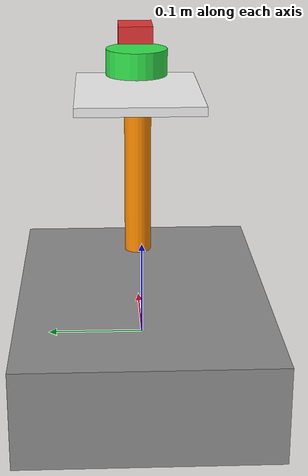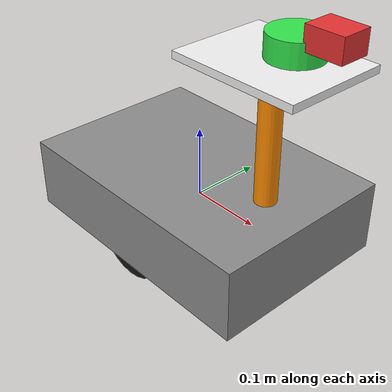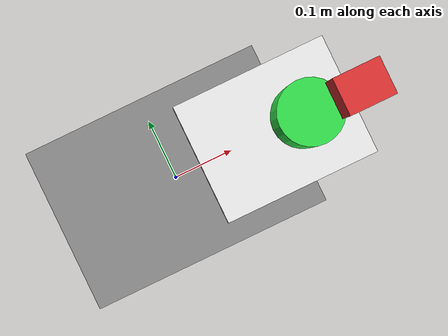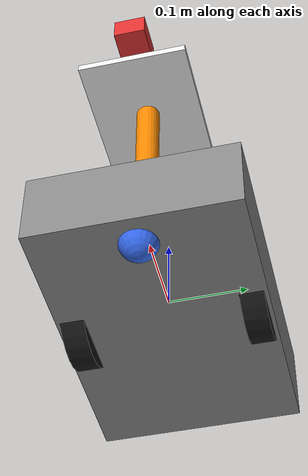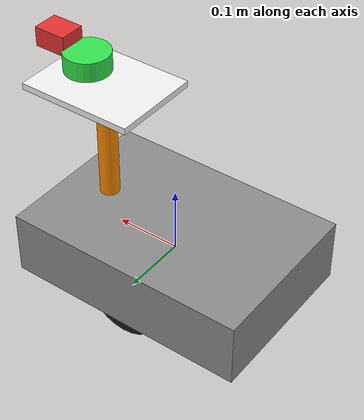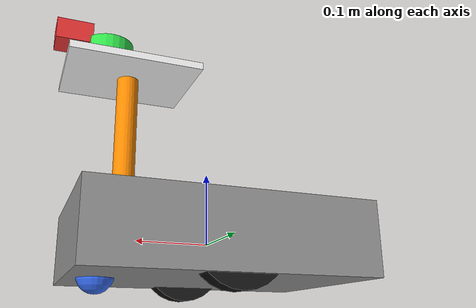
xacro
<?xml version="1.0"?>
<robot xmlns:xacro="http://www.ros.org/wiki/xacro" name="reblade_bot">

  <!-- =========================
       Parameters
  ========================== -->
  <!-- Chassis -->
  <xacro:property name="base_length" value="0.38"/>
  <xacro:property name="base_width"  value="0.26"/>
  <xacro:property name="base_height" value="0.10"/>
  <xacro:property name="base_mass"   value="20.0"/>

  <!-- Wheels -->
  <xacro:property name="wheel_radius" value="0.06"/>
  <xacro:property name="wheel_width"  value="0.03"/>
  <xacro:property name="wheel_mass"   value="1.0"/>
  <xacro:property name="wheel_sep"    value="0.22"/>
  <xacro:property name="wheel_x"      value="0.00"/>

  <!-- Clearance (makes chassis float above ground) -->
  <xacro:property name="ground_clearance" value="0.02"/>

  <!-- Caster -->
  <xacro:property name="caster_radius" value="0.025"/>
  <xacro:property name="caster_mass"   value="0.3"/>
  <xacro:property name="caster_x"      value="0.15"/>

  <!-- Mast + deck -->
  <xacro:property name="mast_height"    value="0.18"/>
  <xacro:property name="mast_radius"    value="0.015"/>
  <xacro:property name="mast_x"         value="0.12"/>
  <xacro:property name="deck_thickness" value="0.01"/>
  <xacro:property name="deck_size_x"    value="0.18"/>
  <xacro:property name="deck_size_y"    value="0.14"/>

  <!-- =========================
       base_link (center of chassis box)
  ========================== -->
  <link name="base_link">
    <visual>
      <origin xyz="0 0 0" rpy="0 0 0"/>
      <geometry><box size="${base_length} ${base_width} ${base_height}"/></geometry>
      <material name="chassis_gray"><color rgba="0.55 0.55 0.55 1.0"/></material>
    </visual>
    <collision>
      <origin xyz="0 0 0" rpy="0 0 0"/>
      <geometry><box size="${base_length} ${base_width} ${base_height}"/></geometry>
    </collision>
    <inertial>
      <!-- Lower COM for stability -->
      <origin xyz="0 0 ${-base_height*0.15}" rpy="0 0 0"/>
      <mass value="${base_mass}"/>
      <inertia ixx="0.35" ixy="0" ixz="0" iyy="0.50" iyz="0" izz="0.60"/>
    </inertial>
  </link>

  <xacro:macro name="wheel_link" params="name">
    <link name="${name}">
      <visual>
        <origin xyz="0 0 0" rpy="1.5708 0 0"/>
        <geometry><cylinder radius="${wheel_radius}" length="${wheel_width}"/></geometry>
        <material name="wheel_black"><color rgba="0.08 0.08 0.08 1.0"/></material>
      </visual>
      <collision>
        <origin xyz="0 0 0" rpy="1.5708 0 0"/>
        <geometry><cylinder radius="${wheel_radius}" length="${wheel_width}"/></geometry>
      </collision>
      <inertial>
        <origin xyz="0 0 0" rpy="0 0 0"/>
        <mass value="${wheel_mass}"/>
        <inertia ixx="0.003" ixy="0" ixz="0" iyy="0.003" iyz="0" izz="0.003"/>
      </inertial>
    </link>
  </xacro:macro>

  <xacro:wheel_link name="left_wheel_link"/>
  <xacro:wheel_link name="right_wheel_link"/>

  <!-- Place wheels using joint origin; axle lowered with clearance -->
  <joint name="left_wheel_joint" type="continuous">
    <parent link="base_link"/>
    <child link="left_wheel_link"/>
    <origin xyz="${wheel_x} ${wheel_sep/2} ${-base_height/2 + wheel_radius - ground_clearance}" rpy="0 0 0"/>
    <axis xyz="0 1 0"/>
  </joint>

  <joint name="right_wheel_joint" type="continuous">
    <parent link="base_link"/>
    <child link="right_wheel_link"/>
    <origin xyz="${wheel_x} ${-wheel_sep/2} ${-base_height/2 + wheel_radius - ground_clearance}" rpy="0 0 0"/>
    <axis xyz="0 1 0"/>
  </joint>

  <!-- =========================
       Front caster (sphere)
  ========================== -->
  <link name="caster_link">
    <visual>
      <origin xyz="0 0 0" rpy="0 0 0"/>
      <geometry><sphere radius="${caster_radius}"/></geometry>
      <material name="caster_blue"><color rgba="0.20 0.40 0.90 1.0"/></material>
    </visual>
    <collision>
      <origin xyz="0 0 0" rpy="0 0 0"/>
      <geometry><sphere radius="${caster_radius}"/></geometry>
    </collision>
    <inertial>
      <origin xyz="0 0 0" rpy="0 0 0"/>
      <mass value="${caster_mass}"/>
      <inertia ixx="0.0002" ixy="0" ixz="0" iyy="0.0002" iyz="0" izz="0.0002"/>
    </inertial>
  </link>

  <joint name="caster_joint" type="fixed">
    <parent link="base_link"/>
    <child link="caster_link"/>
    <origin xyz="${caster_x} 0 ${-base_height/2 + caster_radius - ground_clearance}" rpy="0 0 0"/>
  </joint>

  <!-- =========================
       Mast + sensor deck
  ========================== -->
  <link name="mast_link">
    <visual>
      <origin xyz="0 0 0" rpy="0 0 0"/>
      <geometry><cylinder radius="${mast_radius}" length="${mast_height}"/></geometry>
      <material name="mast_orange"><color rgba="1.00 0.55 0.00 1.0"/></material>
    </visual>
    <collision>
      <origin xyz="0 0 0" rpy="0 0 0"/>
      <geometry><cylinder radius="${mast_radius}" length="${mast_height}"/></geometry>
    </collision>
  </link>

  <joint name="mast_joint" type="fixed">
    <parent link="base_link"/>
    <child link="mast_link"/>
    <origin xyz="${mast_x} 0 ${base_height/2 + mast_height/2}" rpy="0 0 0"/>
  </joint>

  <link name="sensor_deck_link">
    <visual>
      <origin xyz="0 0 0" rpy="0 0 0"/>
      <geometry><box size="${deck_size_x} ${deck_size_y} ${deck_thickness}"/></geometry>
      <material name="deck_white"><color rgba="0.95 0.95 0.95 1.0"/></material>
    </visual>
    <collision>
      <origin xyz="0 0 0" rpy="0 0 0"/>
      <geometry><box size="${deck_size_x} ${deck_size_y} ${deck_thickness}"/></geometry>
    </collision>
  </link>

  <joint name="sensor_deck_joint" type="fixed">
    <parent link="mast_link"/>
    <child link="sensor_deck_link"/>
    <origin xyz="0 0 ${mast_height/2 + deck_thickness/2}" rpy="0 0 0"/>
  </joint>

  <!-- =========================
       Lidar + Camera
  ========================== -->
  <link name="lidar_link">
    <visual>
      <origin xyz="0 0 0" rpy="0 0 0"/>
      <geometry><cylinder radius="0.035" length="0.03"/></geometry>
      <material name="lidar_green"><color rgba="0.20 0.90 0.30 1.0"/></material>
    </visual>
  </link>

  <joint name="lidar_joint" type="fixed">
    <parent link="sensor_deck_link"/>
    <child link="lidar_link"/>
    <origin xyz="0.03 0 0.03" rpy="0 0 0"/>
  </joint>

  <link name="camera_link">
    <visual>
      <origin xyz="0 0 0" rpy="0 0 0"/>
      <geometry><box size="0.05 0.04 0.03"/></geometry>
      <material name="camera_red"><color rgba="0.90 0.20 0.20 1.0"/></material>
    </visual>
  </link>

  <joint name="camera_joint" type="fixed">
    <parent link="sensor_deck_link"/>
    <child link="camera_link"/>
    <origin xyz="0.08 0 0.05" rpy="0 0 0"/>
  </joint>

  <link name="camera_optical_frame"/>
  <joint name="camera_optical_joint" type="fixed">
    <parent link="camera_link"/>
    <child link="camera_optical_frame"/>
    <origin xyz="0 0 0" rpy="-1.5708 0 -1.5708"/>
  </joint>

  <!-- =========================
       Gazebo Harmonic / gz-sim plugins
  ========================== -->
  <gazebo>
    <plugin filename="gz-sim-diff-drive-system" name="gz::sim::systems::DiffDrive">
      <left_joint>left_wheel_joint</left_joint>
      <right_joint>right_wheel_joint</right_joint>
      <wheel_separation>${wheel_sep}</wheel_separation>
      <wheel_radius>${wheel_radius}</wheel_radius>
      <topic>/cmd_vel</topic>
      <odom_topic>/odom</odom_topic>
      <odom_frame>odom</odom_frame>
      <base_frame>base_link</base_frame>
      <update_rate>50</update_rate>
    </plugin>
  </gazebo>

<gazebo reference="lidar_link">
  <sensor name="lidar" type="gpu_lidar">
    <update_rate>10</update_rate>
    <topic>/scan</topic>
    <ray>
      <scan>
        <horizontal>
          <samples>720</samples>
          <min_angle>-1.5708</min_angle>
          <max_angle>1.5708</max_angle>
        </horizontal>
      </scan>
      <range>
        <min>0.12</min>
        <max>8.0</max>
        <resolution>0.01</resolution>
      </range>
    </ray>
  </sensor>
</gazebo>

  <gazebo reference="camera_link">
    <sensor name="camera" type="camera">
      <update_rate>20</update_rate>
      <topic>/camera/image_raw</topic>
      <camera>
        <horizontal_fov>1.047</horizontal_fov>
        <image>
          <width>640</width>
          <height>480</height>
          <format>R8G8B8</format>
        </image>
        <clip><near>0.05</near><far>50</far></clip>
      </camera>
    </sensor>
  </gazebo>

  <!-- Friction hints -->
  <gazebo reference="left_wheel_link"><mu1>3.0</mu1><mu2>3.0</mu2></gazebo>
  <gazebo reference="right_wheel_link"><mu1>3.0</mu1><mu2>3.0</mu2></gazebo>
  <gazebo reference="caster_link"><mu1>1.2</mu1><mu2>1.2</mu2></gazebo>

</robot>
